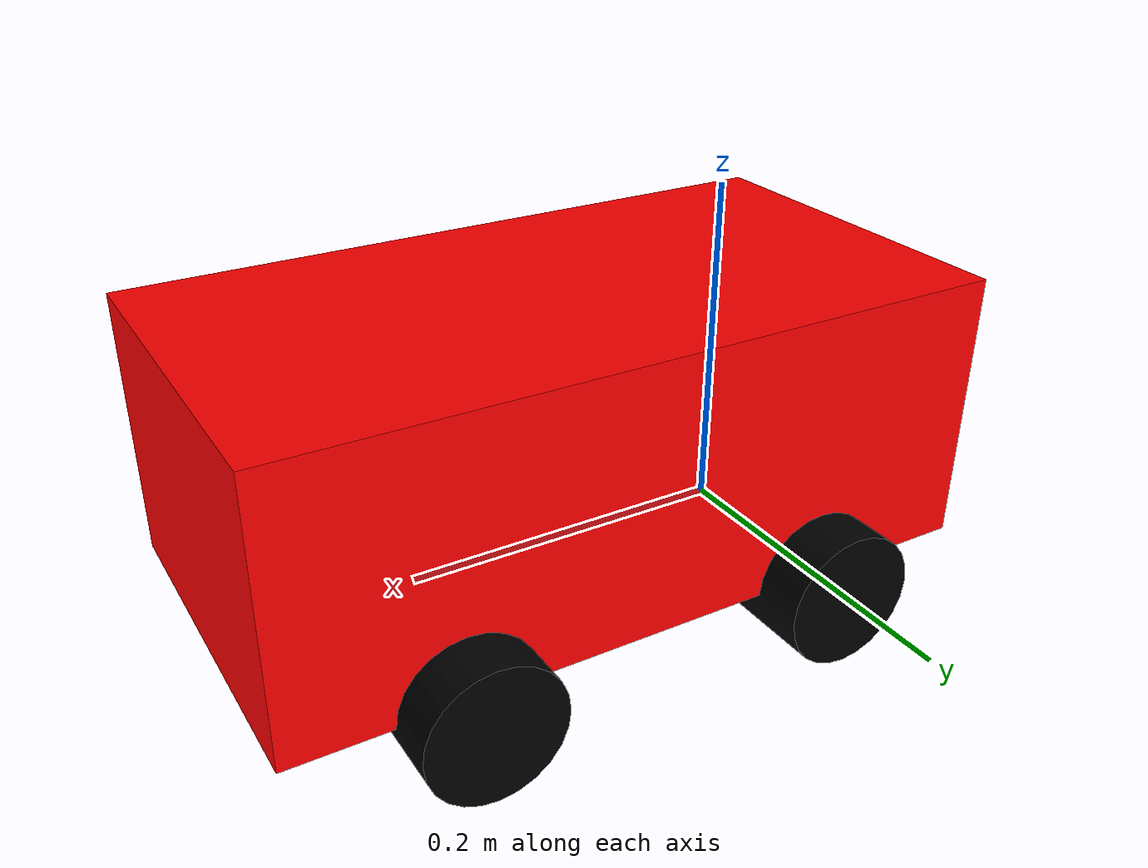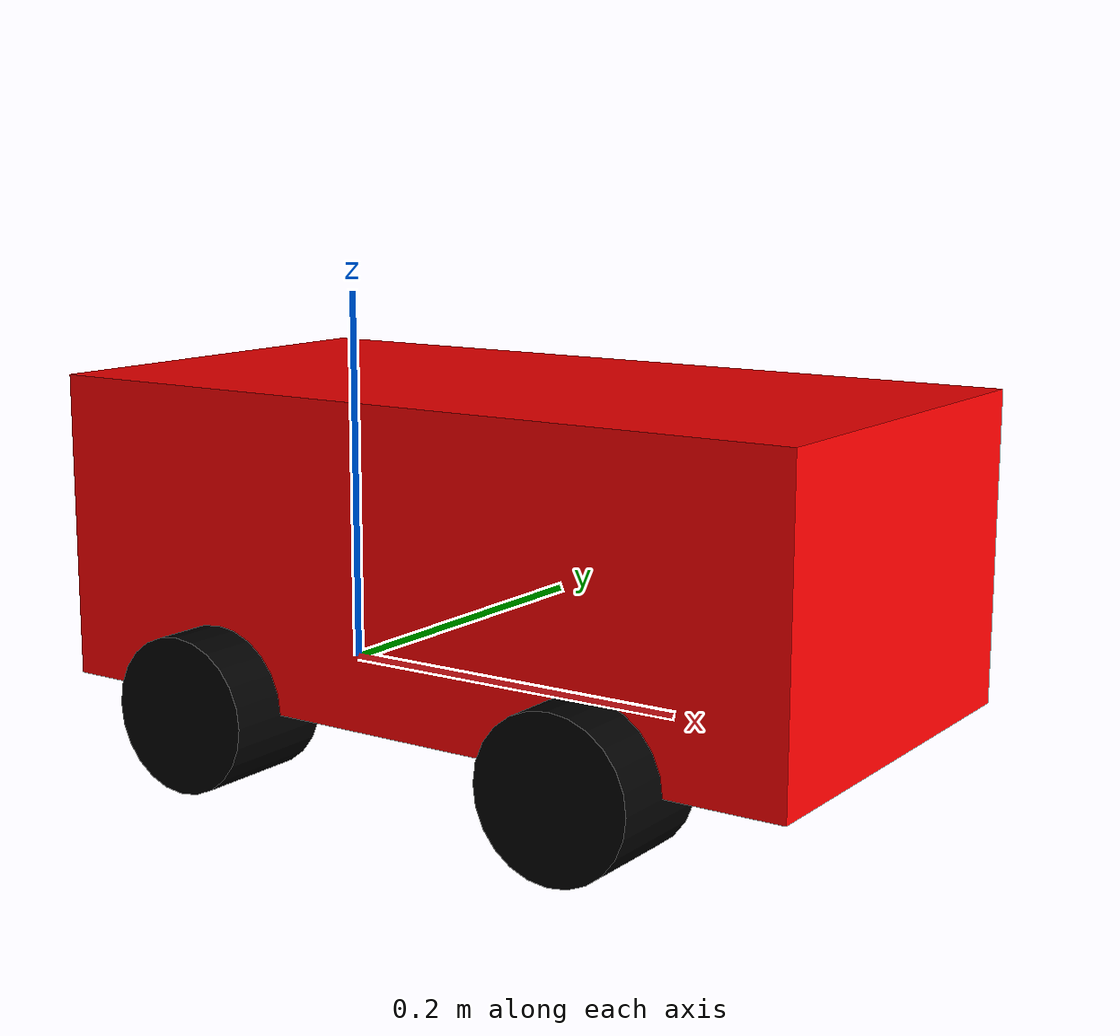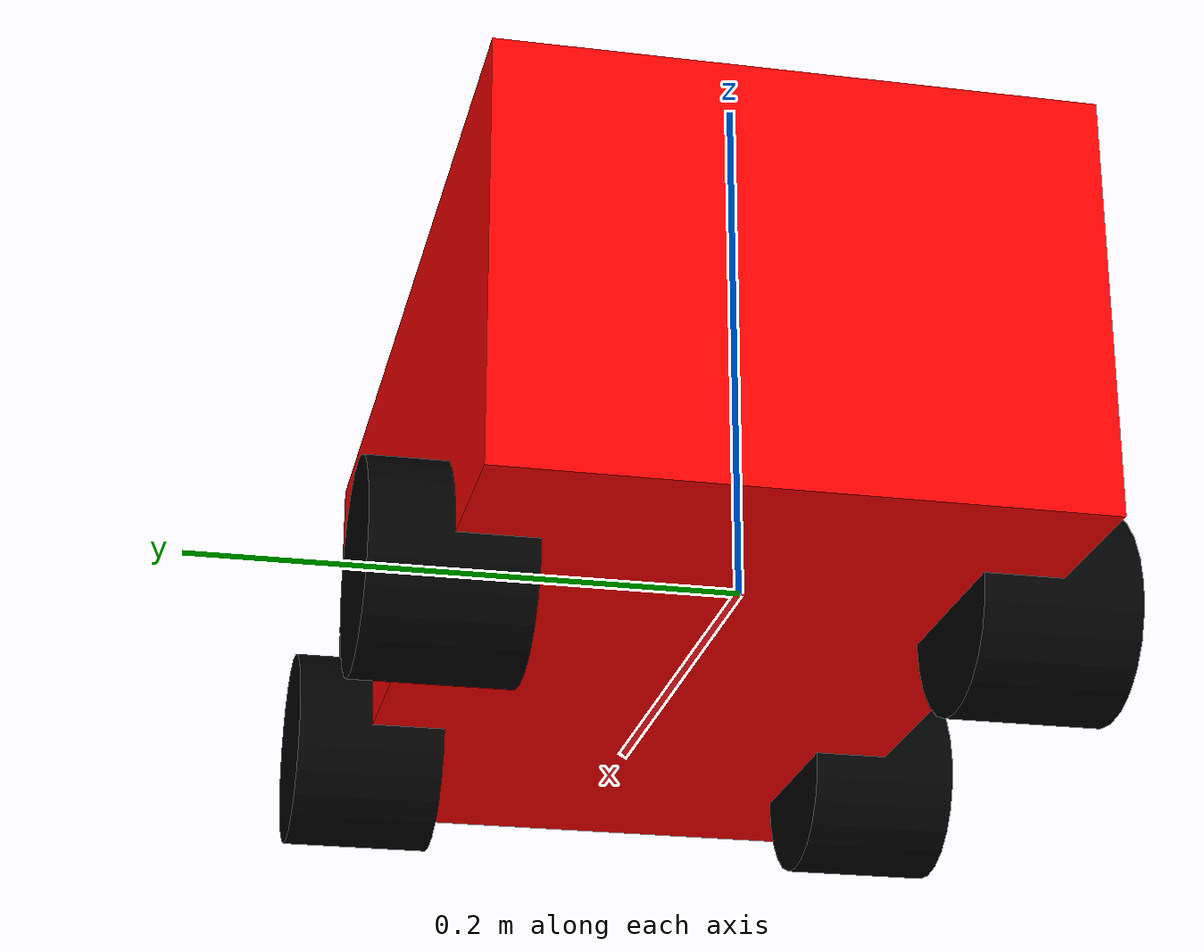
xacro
<?xml version="1.0"?>
<robot xmlns:xacro="http://www.ros.org/wiki/xacro" name="robot">

    <xacro:include filename="color.urdf.xacro" />
    <xacro:include filename="inertial_macros.urdf.xacro" />

    <link name="world"></link>

    <joint name="chassis_joint" type="fixed">
        <parent link="world" />
        <child link="chassis_link" />
        <origin xyz="-0.1 0 0" />
    </joint>

    <link name="chassis_link">
        <visual>
            <origin xyz="0.21 0 0.08" />
            <geometry>
                <box size="0.42 0.22 0.16" />
            </geometry>
            <material name="red" />
        </visual>

        <collision>
            <origin xyz="0.21 0 0.08" />
            <geometry>
                <box size="0.42 0.22 0.16" />
            </geometry>
        </collision>

        <xacro_inertial_box mass="8" x="0.42" y="0.22" z="0.16">
            <origin xyz="0.21 0 0.08" rpy="0 0 0" />
        </xacro_inertial_box>

    </link>

    <joint
        name="front_left_wheel_joint" type="continuous">
        <parent link="world" />
        <child link="front_left_wheel_link" />
        <origin xyz="0.22 0.11 0" rpy="-${pi/2} 0 0" />
        <axis xyz="0 0 1" />

        <ackermann_steering_controller />
        <steer_angle>0.2</steer_angle>
        <wheelbase>1.0</wheelbase>
        <track_width>0.8</track_width>
    </joint>

    <link
        name="front_left_wheel_link">
        <visual>
            <geometry>
                <cylinder length="0.06" radius="0.04" />
            </geometry>
            <material name="black" />
        </visual>

        <collision>
            <geometry>
                <cylinder length="0.06" radius="0.04" />
            </geometry>
        </collision>

        <inertial_cylinder mass="0.8" length="0.06" radius="0.04">
            <origin xyz="0 0 0" rpy="0 0 0" />
        </inertial_cylinder>
    </link>

    <joint
        name="front_right_wheel_joint" type="continuous">
        <parent link="world" />
        <child link="front_right_wheel_link" />
        <origin xyz="0.22 -0.11 0" rpy="${pi/2} 0 0" />
        <axis xyz="0 0 -1 " />

        <ackermann_steering_controller />
        <steer_angle>-1</steer_angle>
        <wheelbase>1.0</wheelbase>
        <track_width>0.8</track_width>
    </joint>

    <link
        name="front_right_wheel_link">
        <visual>
            <geometry>
                <cylinder length="0.06" radius="0.04" />
            </geometry>
            <material name="black" />
        </visual>

        <collision>
            <geometry>
                <cylinder length="0.06" radius="0.04" />
            </geometry>
        </collision>

        <inertial_cylinder mass="0.8" length="0.06" radius="0.04">
            <origin xyz="0 0 0" rpy="0 0 0" />
        </inertial_cylinder>
    </link>

    <joint
        name="rear_left_wheel_joint" type="continuous">
        <parent link="world" />
        <child link="rear_left_wheel_link" />
        <origin xyz="0 0.11 0" rpy="-${pi/2} 0 0" />
        <axis xyz="0 0 1" />
    </joint>

    <link
        name="rear_left_wheel_link">
        <visual>
            <geometry>
                <cylinder length="0.06" radius="0.04" />
            </geometry>
            <material name="black" />
        </visual>

        <collision>
            <geometry>
                <cylinder length="0.06" radius="0.04" />
            </geometry>
        </collision>

        <inertial_cylinder mass="0.8" length="0.06" radius="0.04">
            <origin xyz="0 0 0" rpy="0 0 0" />
        </inertial_cylinder>
    </link>

    <joint
        name="rear_right_wheel_joint" type="continuous">
        <parent link="world" />
        <child link="rear_right_wheel_link" />
        <origin xyz="0 -0.11 0" rpy="${pi/2} 0 0" />
        <axis xyz="0 0 -1 " />
    </joint>

    <link
        name="rear_right_wheel_link">
        <visual>
            <geometry>
                <cylinder length="0.06" radius="0.04" />
            </geometry>
            <material name="black" />
        </visual>

        <collision>
            <geometry>
                <cylinder length="0.06" radius="0.04" />
            </geometry>
        </collision>

        <inertial_cylinder mass="0.8" length="0.06" radius="0.04">
            <origin xyz="0 0 0" rpy="0 0 0" />
        </inertial_cylinder>
    </link>
</robot>

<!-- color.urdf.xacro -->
<robot xmlns:xacro="https://www.ros.org/wiki/xacro" name="robot">

    <material name="red">
        <color rgba="1 0 0 1" />
    </material>

    <material name="green">
        <color rgba="0 1 0 1" />
    </material>

    <material name="blue">
        <color rgba="0.2 0.2 1 1" />
    </material>

    <material name="black">
        <color rgba="0 0 0 1" />
    </material>

    <material name="white">
        <color rgba="1 1 1 1" />
    </material>

    <material name="orange">
        <color rgba="1 0.3 0.1 1" />
    </material>

</robot>
